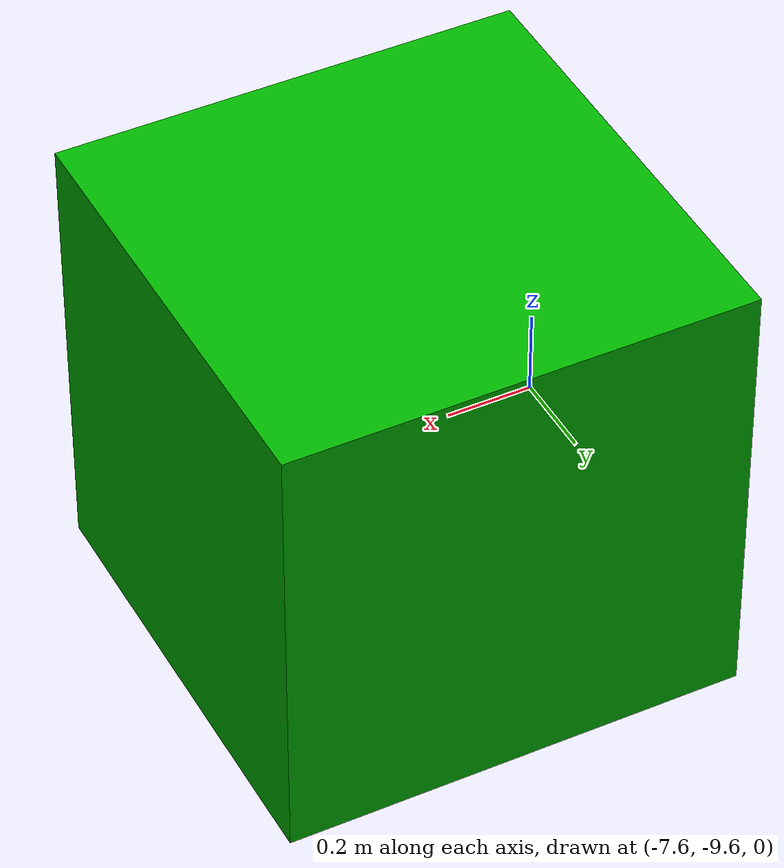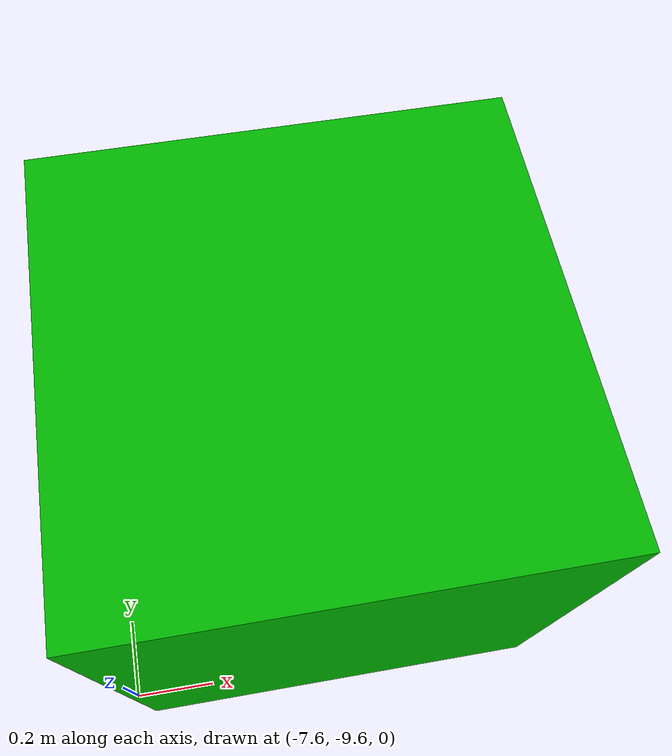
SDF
<?xml version='1.0'?>
<sdf version="1.7">
  <model name="green_block">
    <pose>-7.05632 -9.14575 0.5 -0 -0 -0</pose>
    <static>true</static>
    <link name="link">
      <inertial>
        <mass>1.0</mass>
        <inertia>
          <ixx>0.01</ixx>
          <ixy>0.0</ixy>
          <ixz>0.0</ixz>
          <iyy>0.01</iyy>
          <iyz>0.0</iyz>
          <izz>0.01</izz>
        </inertia>
      </inertial>
      <collision name="collision">
        <geometry>
          <box>
            <size>1.0 1.0 1.0</size>
          </box>
        </geometry>
      </collision>
      <visual name="visual">
        <geometry>
          <box>
            <size>1.0 1.0 1.0</size>
          </box>
        </geometry>
         <material>
          <ambient>0.0 0.7 0.0 1</ambient>
          <diffuse>0.0 0.7 0.0 1</diffuse>
          <specular>0 0 0 0</specular>
          <emissive>0 0 0 1</emissive>
        </material>
      </visual>
    </link>
  </model>
</sdf>
